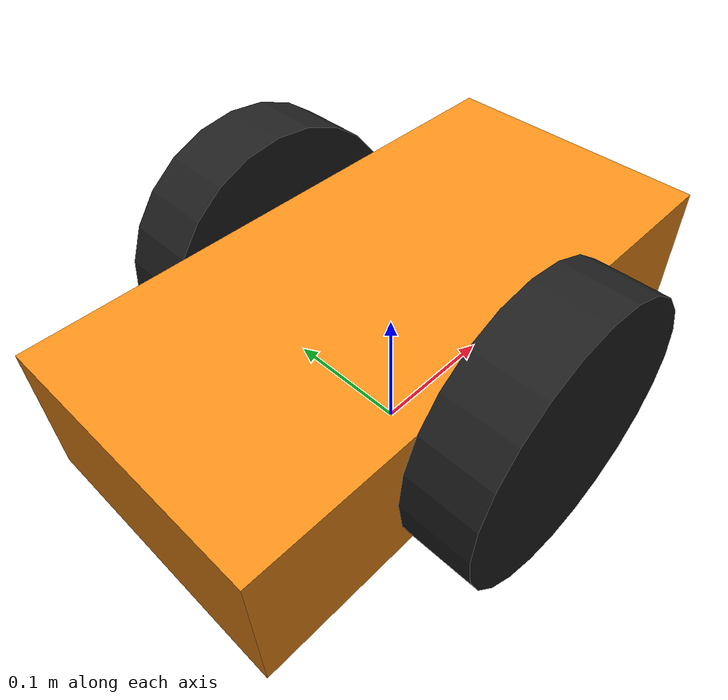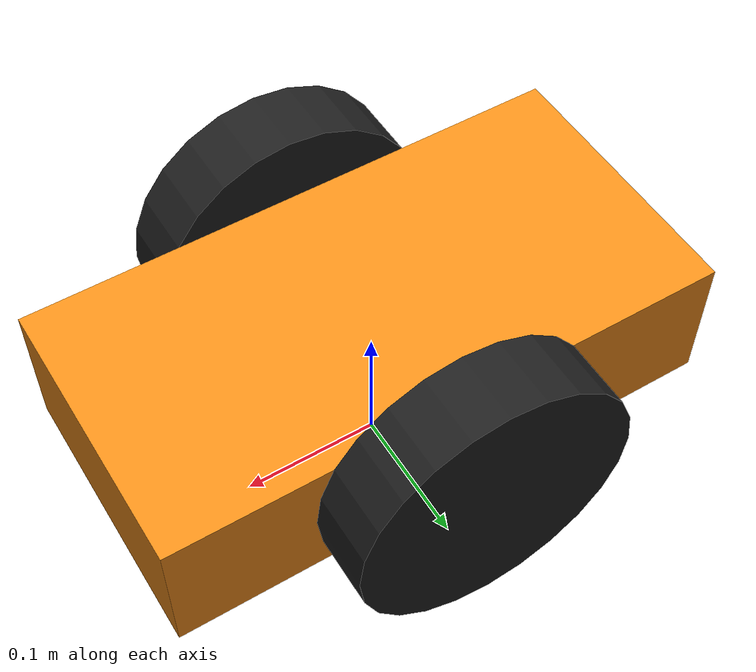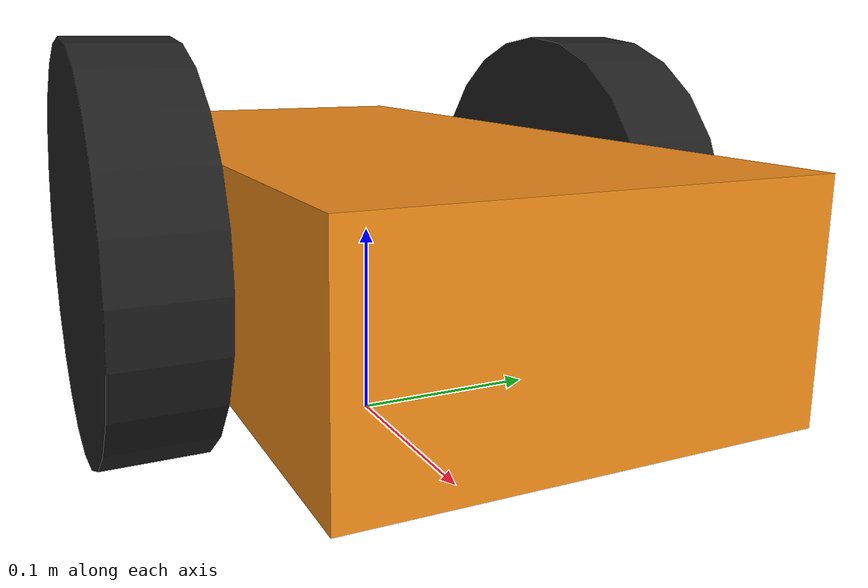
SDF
<sdf version='1.4'>
  <model name='mobot'>
    <link name='chassis'>
      <pose>0 0 0 0 -0 0</pose>
      <inertial>
        <pose>-0.0136364 0 0.0954545 0 -0 0</pose>
        <mass>55</mass>
        <inertia>
          <ixx>0.224697</ixx>
          <ixy>0</ixy>
          <ixz>-0.0340909</ixz>
          <iyy>0.82697</iyy>
          <iyz>0</iyz>
          <izz>0.815606</izz>
        </inertia>
      </inertial>
      <collision name='chassis_collision'>
        <pose>0 0 0.1 0 -0 0</pose>
        <geometry>
          <box>
            <size>0.4 0.2 0.1</size>
          </box>
        </geometry>
        <surface>
          <contact>
            <ode/>
          </contact>
          <friction>
            <ode/>
          </friction>
        </surface>
      </collision>
      <collision name='chassis_collision_caster_wheel'>
        <pose>-0.15 0 0.05 0 -0 0</pose>
        <geometry>
          <sphere>
            <radius>0.05</radius>
          </sphere>
        </geometry>
        <surface>
          <contact>
            <ode/>
          </contact>
          <friction>
            <ode/>
          </friction>
        </surface>
        <surface>
          <contact>
            <ode/>
          </contact>
          <friction>
            <ode>
              <mu>0</mu>
              <mu2>0</mu2>
            </ode>
          </friction>
        </surface>
      </collision>
      <visual name='chassis_visual'>
        <pose>0 0 0.1 0 -0 0</pose>
        <geometry>
          <box>
            <size>0.4 0.2 0.1</size>
          </box>
        </geometry>
        <material>
          <script>
            <name>Gazebo/Orange</name>
            <uri>__default__</uri>
          </script>
        </material>
      </visual>
      <visual name='chassis_visual_caster_wheel'>
        <pose>-0.15 0 0.05 0 -0 0</pose>
        <geometry>
          <sphere>
            <radius>0.05</radius>
          </sphere>
        </geometry>
        <material>
          <script>
            <name>Gazebo/Red</name>
            <uri>__default__</uri>
          </script>
        </material>
      </visual>
      <velocity_decay>
        <linear>0</linear>
        <angular>0</angular>
      </velocity_decay>
      <gravity>1</gravity>
      <velocity_decay>
        <linear>0</linear>
        <angular>0</angular>
      </velocity_decay>
      <self_collide>0</self_collide>
    </link>
    <link name='left_wheel'>
      <pose>0 0.125 0.1 0 -0 0</pose>
      <inertial>
        <pose>0 0 0 -3.14158 1.57079 -1.57078</pose>
        <mass>5</mass>
        <inertia>
          <ixx>0.0135417</ixx>
          <ixy>0</ixy>
          <ixz>0</ixz>
          <iyy>0.0135417</iyy>
          <iyz>0</iyz>
          <izz>0.025</izz>
        </inertia>
      </inertial>
      <collision name='left_wheel_collision'>
        <pose>0 0 0 -3.14158 1.57079 -1.57078</pose>
        <geometry>
          <cylinder>
            <length>0.05</length>
            <radius>0.1</radius>
          </cylinder>
        </geometry>
        <surface>
          <contact>
            <ode>
              <kp>1e+07</kp>
              <kd>1</kd>
            </ode>
          </contact>
          <friction>
            <ode>
              <mu>1</mu>
              <mu2>1</mu2>
              <fdir1>1 0 0</fdir1>
            </ode>
          </friction>
        </surface>
      </collision>
      <visual name='left_wheel_visual'>
        <pose>0 0 0 -3.14158 1.57079 -1.57078</pose>
        <geometry>
          <cylinder>
            <length>0.05</length>
            <radius>0.1</radius>
          </cylinder>
        </geometry>
        <material>
          <script>
            <name>Gazebo/Black</name>
            <uri>__default__</uri>
          </script>
        </material>
      </visual>
      <gravity>1</gravity>
      <velocity_decay>
        <linear>0</linear>
        <angular>0</angular>
      </velocity_decay>
      <self_collide>0</self_collide>
    </link>
    <joint name='left_wheel_hinge' type='revolute'>
      <child>left_wheel</child>
      <parent>chassis</parent>
      <axis>
        <xyz>0 1 0</xyz>
        <limit>
          <lower>-1e+16</lower>
          <upper>1e+16</upper>
        </limit>
        <dynamics/>
      </axis>
    </joint>
    <link name='right_wheel'>
      <pose>0 -0.125 0.1 0 -0 0</pose>
      <inertial>
        <pose>0 0 0 -3.14158 1.57079 -1.57078</pose>
        <mass>5</mass>
        <inertia>
          <ixx>0.0135417</ixx>
          <ixy>0</ixy>
          <ixz>0</ixz>
          <iyy>0.0135417</iyy>
          <iyz>0</iyz>
          <izz>0.025</izz>
        </inertia>
      </inertial>
      <collision name='right_wheel_collision'>
        <pose>0 0 0 -3.14158 1.57079 -1.57078</pose>
        <geometry>
          <cylinder>
            <length>0.05</length>
            <radius>0.1</radius>
          </cylinder>
        </geometry>
        <surface>
          <contact>
            <ode>
              <kp>1e+07</kp>
              <kd>1</kd>
            </ode>
          </contact>
          <friction>
            <ode>
              <mu>1</mu>
              <mu2>1</mu2>
              <fdir1>1 0 0</fdir1>
            </ode>
          </friction>
        </surface>
      </collision>
      <visual name='right_wheel_visual'>
        <pose>0 0 0 -3.14158 1.57079 -1.57078</pose>
        <geometry>
          <cylinder>
            <length>0.05</length>
            <radius>0.1</radius>
          </cylinder>
        </geometry>
        <material>
          <script>
            <name>Gazebo/Black</name>
            <uri>__default__</uri>
          </script>
        </material>
      </visual>
      <gravity>1</gravity>
      <velocity_decay>
        <linear>0</linear>
        <angular>0</angular>
      </velocity_decay>
      <self_collide>0</self_collide>
    </link>
    <joint name='right_wheel_hinge' type='revolute'>
      <child>right_wheel</child>
      <parent>chassis</parent>
      <axis>
        <xyz>0 1 0</xyz>
        <limit>
          <lower>-1e+16</lower>
          <upper>1e+16</upper>
        </limit>
        <dynamics/>
      </axis>
    </joint>
    <static>0</static>
    <plugin name='gazebo_ros_control' filename='libgazebo_ros_control.so'>
      <robotNamespace>/mobot</robotNamespace>
    </plugin>
  </model>
</sdf>
